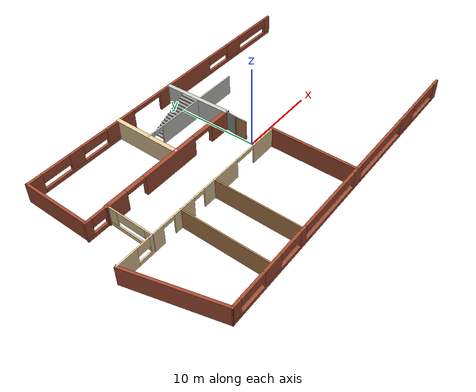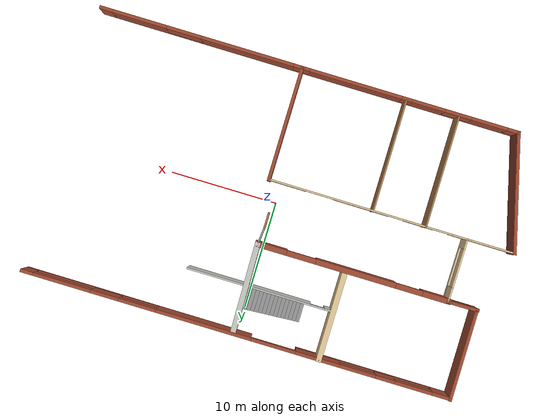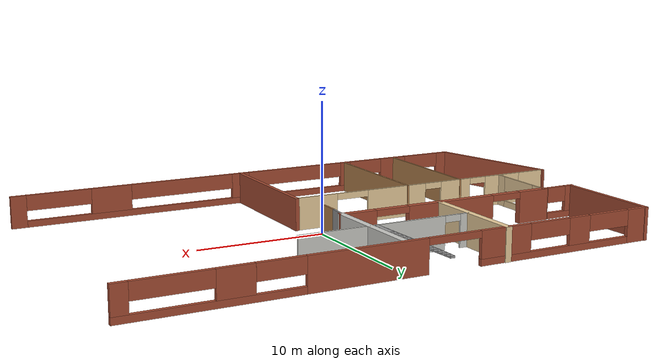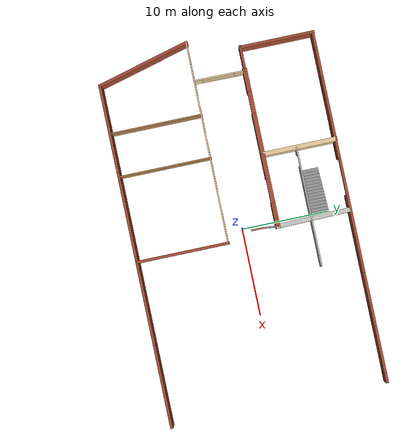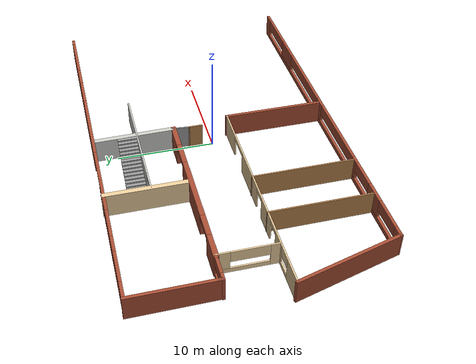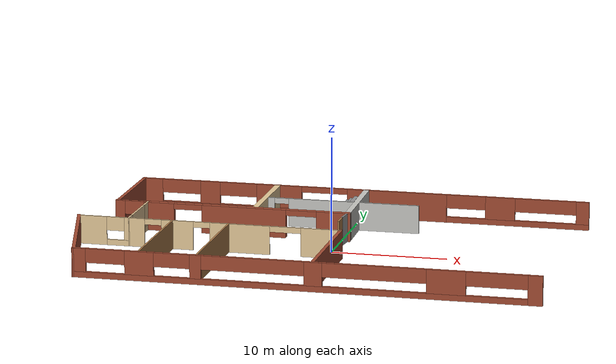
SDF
<sdf version="1.6">
 <world name="default">
  <model name="Building">
   <pose>-0.890597 0.014931 0 0 -0 0</pose>
   <link name="Stairs_0">
    <visual name="Stairs_0_Visual_0">
     <pose>-4.08117 8.87242 0.083333 0 -0 1.5708</pose>
     <geometry><box><size>2.02255 0.353633 0.166667</size></box></geometry>
     <material>
      <script><uri>file://media/materials/scripts/gazebo.material</uri><name>Gazebo/Grey</name></script>
      <ambient>1 1 1 1</ambient>
     </material>
     <meta><layer>0</layer></meta>
    </visual>
    <collision name="Stairs_0_Collision_0">
     <geometry><box><size>2.02255 0.353633 0.166667</size></box></geometry>
     <pose>-4.08117 8.87242 0.083333 0 -0 1.5708</pose>
    </collision>
    <visual name="Stairs_0_Visual_1">
     <pose>-3.72754 8.87242 0.25 0 -0 1.5708</pose>
     <geometry><box><size>2.02255 0.353633 0.166667</size></box></geometry>
     <material>
      <script><uri>file://media/materials/scripts/gazebo.material</uri><name>Gazebo/Grey</name></script>
      <ambient>1 1 1 1</ambient>
     </material>
     <meta><layer>0</layer></meta>
    </visual>
    <collision name="Stairs_0_Collision_1">
     <geometry><box><size>2.02255 0.353633 0.166667</size></box></geometry>
     <pose>-3.72754 8.87242 0.25 0 -0 1.5708</pose>
    </collision>
    <visual name="Stairs_0_Visual_2">
     <pose>-3.3739 8.87242 0.416667 0 -0 1.5708</pose>
     <geometry><box><size>2.02255 0.353633 0.166667</size></box></geometry>
     <material>
      <script><uri>file://media/materials/scripts/gazebo.material</uri><name>Gazebo/Grey</name></script>
      <ambient>1 1 1 1</ambient>
     </material>
     <meta><layer>0</layer></meta>
    </visual>
    <collision name="Stairs_0_Collision_2">
     <geometry><box><size>2.02255 0.353633 0.166667</size></box></geometry>
     <pose>-3.3739 8.87242 0.416667 0 -0 1.5708</pose>
    </collision>
    <visual name="Stairs_0_Visual_3">
     <pose>-3.02027 8.87242 0.583333 0 -0 1.5708</pose>
     <geometry><box><size>2.02255 0.353633 0.166667</size></box></geometry>
     <material>
      <script><uri>file://media/materials/scripts/gazebo.material</uri><name>Gazebo/Grey</name></script>
      <ambient>1 1 1 1</ambient>
     </material>
     <meta><layer>0</layer></meta>
    </visual>
    <collision name="Stairs_0_Collision_3">
     <geometry><box><size>2.02255 0.353633 0.166667</size></box></geometry>
     <pose>-3.02027 8.87242 0.583333 0 -0 1.5708</pose>
    </collision>
    <visual name="Stairs_0_Visual_4">
     <pose>-2.66664 8.87242 0.75 0 -0 1.5708</pose>
     <geometry><box><size>2.02255 0.353633 0.166667</size></box></geometry>
     <material>
      <script><uri>file://media/materials/scripts/gazebo.material</uri><name>Gazebo/Grey</name></script>
      <ambient>1 1 1 1</ambient>
     </material>
     <meta><layer>0</layer></meta>
    </visual>
    <collision name="Stairs_0_Collision_4">
     <geometry><box><size>2.02255 0.353633 0.166667</size></box></geometry>
     <pose>-2.66664 8.87242 0.75 0 -0 1.5708</pose>
    </collision>
    <visual name="Stairs_0_Visual_5">
     <pose>-2.313 8.87242 0.916667 0 -0 1.5708</pose>
     <geometry><box><size>2.02255 0.353633 0.166667</size></box></geometry>
     <material>
      <script><uri>file://media/materials/scripts/gazebo.material</uri><name>Gazebo/Grey</name></script>
      <ambient>1 1 1 1</ambient>
     </material>
     <meta><layer>0</layer></meta>
    </visual>
    <collision name="Stairs_0_Collision_5">
     <geometry><box><size>2.02255 0.353633 0.166667</size></box></geometry>
     <pose>-2.313 8.87242 0.916667 0 -0 1.5708</pose>
    </collision>
    <visual name="Stairs_0_Visual_6">
     <pose>-1.95937 8.87242 1.08333 0 -0 1.5708</pose>
     <geometry><box><size>2.02255 0.353633 0.166667</size></box></geometry>
     <material>
      <script><uri>file://media/materials/scripts/gazebo.material</uri><name>Gazebo/Grey</name></script>
      <ambient>1 1 1 1</ambient>
     </material>
     <meta><layer>0</layer></meta>
    </visual>
    <collision name="Stairs_0_Collision_6">
     <geometry><box><size>2.02255 0.353633 0.166667</size></box></geometry>
     <pose>-1.95937 8.87242 1.08333 0 -0 1.5708</pose>
    </collision>
    <visual name="Stairs_0_Visual_7">
     <pose>-1.60574 8.87242 1.25 0 -0 1.5708</pose>
     <geometry><box><size>2.02255 0.353633 0.166667</size></box></geometry>
     <material>
      <script><uri>file://media/materials/scripts/gazebo.material</uri><name>Gazebo/Grey</name></script>
      <ambient>1 1 1 1</ambient>
     </material>
     <meta><layer>0</layer></meta>
    </visual>
    <collision name="Stairs_0_Collision_7">
     <geometry><box><size>2.02255 0.353633 0.166667</size></box></geometry>
     <pose>-1.60574 8.87242 1.25 0 -0 1.5708</pose>
    </collision>
    <visual name="Stairs_0_Visual_8">
     <pose>-1.2521 8.87242 1.41667 0 -0 1.5708</pose>
     <geometry><box><size>2.02255 0.353633 0.166667</size></box></geometry>
     <material>
      <script><uri>file://media/materials/scripts/gazebo.material</uri><name>Gazebo/Grey</name></script>
      <ambient>1 1 1 1</ambient>
     </material>
     <meta><layer>0</layer></meta>
    </visual>
    <collision name="Stairs_0_Collision_8">
     <geometry><box><size>2.02255 0.353633 0.166667</size></box></geometry>
     <pose>-1.2521 8.87242 1.41667 0 -0 1.5708</pose>
    </collision>
    <visual name="Stairs_0_Visual_9">
     <pose>-0.898471 8.87242 1.58333 0 -0 1.5708</pose>
     <geometry><box><size>2.02255 0.353633 0.166667</size></box></geometry>
     <material>
      <script><uri>file://media/materials/scripts/gazebo.material</uri><name>Gazebo/Grey</name></script>
      <ambient>1 1 1 1</ambient>
     </material>
     <meta><layer>0</layer></meta>
    </visual>
    <collision name="Stairs_0_Collision_9">
     <geometry><box><size>2.02255 0.353633 0.166667</size></box></geometry>
     <pose>-0.898471 8.87242 1.58333 0 -0 1.5708</pose>
    </collision>
    <visual name="Stairs_0_Visual_10">
     <pose>-0.544838 8.87242 1.75 0 -0 1.5708</pose>
     <geometry><box><size>2.02255 0.353633 0.166667</size></box></geometry>
     <material>
      <script><uri>file://media/materials/scripts/gazebo.material</uri><name>Gazebo/Grey</name></script>
      <ambient>1 1 1 1</ambient>
     </material>
     <meta><layer>0</layer></meta>
    </visual>
    <collision name="Stairs_0_Collision_10">
     <geometry><box><size>2.02255 0.353633 0.166667</size></box></geometry>
     <pose>-0.544838 8.87242 1.75 0 -0 1.5708</pose>
    </collision>
    <visual name="Stairs_0_Visual_11">
     <pose>-0.191204 8.87242 1.91667 0 -0 1.5708</pose>
     <geometry><box><size>2.02255 0.353633 0.166667</size></box></geometry>
     <material>
      <script><uri>file://media/materials/scripts/gazebo.material</uri><name>Gazebo/Grey</name></script>
      <ambient>1 1 1 1</ambient>
     </material>
     <meta><layer>0</layer></meta>
    </visual>
    <collision name="Stairs_0_Collision_11">
     <geometry><box><size>2.02255 0.353633 0.166667</size></box></geometry>
     <pose>-0.191204 8.87242 1.91667 0 -0 1.5708</pose>
    </collision>
    <visual name="Stairs_0_Visual_12">
     <pose>0.162429 8.87242 2.08333 0 -0 1.5708</pose>
     <geometry><box><size>2.02255 0.353633 0.166667</size></box></geometry>
     <material>
      <script><uri>file://media/materials/scripts/gazebo.material</uri><name>Gazebo/Grey</name></script>
      <ambient>1 1 1 1</ambient>
     </material>
     <meta><layer>0</layer></meta>
    </visual>
    <collision name="Stairs_0_Collision_12">
     <geometry><box><size>2.02255 0.353633 0.166667</size></box></geometry>
     <pose>0.162429 8.87242 2.08333 0 -0 1.5708</pose>
    </collision>
    <visual name="Stairs_0_Visual_13">
     <pose>0.516062 8.87242 2.25 0 -0 1.5708</pose>
     <geometry><box><size>2.02255 0.353633 0.166667</size></box></geometry>
     <material>
      <script><uri>file://media/materials/scripts/gazebo.material</uri><name>Gazebo/Grey</name></script>
      <ambient>1 1 1 1</ambient>
     </material>
     <meta><layer>0</layer></meta>
    </visual>
    <collision name="Stairs_0_Collision_13">
     <geometry><box><size>2.02255 0.353633 0.166667</size></box></geometry>
     <pose>0.516062 8.87242 2.25 0 -0 1.5708</pose>
    </collision>
    <visual name="Stairs_0_Visual_14">
     <pose>0.869695 8.87242 2.41667 0 -0 1.5708</pose>
     <geometry><box><size>2.02255 0.353633 0.166667</size></box></geometry>
     <material>
      <script><uri>file://media/materials/scripts/gazebo.material</uri><name>Gazebo/Grey</name></script>
      <ambient>1 1 1 1</ambient>
     </material>
     <meta><layer>0</layer></meta>
    </visual>
    <collision name="Stairs_0_Collision_14">
     <geometry><box><size>2.02255 0.353633 0.166667</size></box></geometry>
     <pose>0.869695 8.87242 2.41667 0 -0 1.5708</pose>
    </collision>
   </link>
   <link name="Wall_17">
    <collision name="Wall_17_Collision">
     <geometry><box><size>8.49148 0.3 2.5</size></box></geometry>
     <pose>0 0 1.25 0 -0 0</pose>
    </collision>
    <visual name="Wall_17_Visual">
     <pose>0 0 1.25 0 -0 0</pose>
     <geometry><box><size>8.49148 0.3 2.5</size></box></geometry>
     <material>
      <script><uri>file://media/materials/scripts/gazebo.material</uri><name>Gazebo/Bricks</name></script>
      <ambient>1 1 1 1</ambient>
     </material>
     <meta><layer>0</layer></meta>
    </visual>
    <pose>-19.1444 8.2625 0 0 -0 1.5708</pose>
   </link>
   <link name="Wall_18">
    <pose>0.905623 12.3125 0 0 -0 0</pose>
    <visual name="Wall_18_Visual_0">
     <pose>-19.2672 0 1.25 0 -0 0</pose>
     <geometry><box><size>1.86558 0.3 2.5</size></box></geometry>
     <material>
      <script><uri>file://media/materials/scripts/gazebo.material</uri><name>Gazebo/Bricks</name></script>
      <ambient>1 1 1 1</ambient>
     </material>
     <meta><layer>0</layer></meta>
    </visual>
    <collision name="Wall_18_Collision_0">
     <geometry><box><size>1.86558 0.3 2.5</size></box></geometry>
     <pose>-19.2672 0 1.25 0 -0 0</pose>
    </collision>
    <visual name="Wall_18_Visual_1">
     <pose>3.08951 0 1.25 0 -0 0</pose>
     <geometry><box><size>8.93043 0.3 2.5</size></box></geometry>
     <material>
      <script><uri>file://media/materials/scripts/gazebo.material</uri><name>Gazebo/Bricks</name></script>
      <ambient>1 1 1 1</ambient>
     </material>
     <meta><layer>0</layer></meta>
    </visual>
    <collision name="Wall_18_Collision_1">
     <geometry><box><size>8.93043 0.3 2.5</size></box></geometry>
     <pose>3.08951 0 1.25 0 -0 0</pose>
    </collision>
    <visual name="Wall_18_Visual_2">
     <pose>-11.9358 0 0.25 0 -0 0</pose>
     <geometry><box><size>12.7972 0.3 0.5</size></box></geometry>
     <material>
      <script><uri>file://media/materials/scripts/gazebo.material</uri><name>Gazebo/Bricks</name></script>
      <ambient>1 1 1 1</ambient>
     </material>
     <meta><layer>0</layer></meta>
    </visual>
    <collision name="Wall_18_Collision_2">
     <geometry><box><size>12.7972 0.3 0.5</size></box></geometry>
     <pose>-11.9358 0 0.25 0 -0 0</pose>
    </collision>
    <visual name="Wall_18_Visual_3">
     <pose>13.8774 0 0.25 0 -0 0</pose>
     <geometry><box><size>12.6453 0.3 0.5</size></box></geometry>
     <material>
      <script><uri>file://media/materials/scripts/gazebo.material</uri><name>Gazebo/Bricks</name></script>
      <ambient>1 1 1 1</ambient>
     </material>
     <meta><layer>0</layer></meta>
    </visual>
    <collision name="Wall_18_Collision_3">
     <geometry><box><size>12.6453 0.3 0.5</size></box></geometry>
     <pose>13.8774 0 0.25 0 -0 0</pose>
    </collision>
    <visual name="Wall_18_Visual_4">
     <pose>-13.9321 0 1.5 0 -0 0</pose>
     <geometry><box><size>1.8072 0.3 2</size></box></geometry>
     <material>
      <script><uri>file://media/materials/scripts/gazebo.material</uri><name>Gazebo/Bricks</name></script>
      <ambient>1 1 1 1</ambient>
     </material>
     <meta><layer>0</layer></meta>
    </visual>
    <collision name="Wall_18_Collision_4">
     <geometry><box><size>1.8072 0.3 2</size></box></geometry>
     <pose>-13.9321 0 1.5 0 -0 0</pose>
    </collision>
    <visual name="Wall_18_Visual_5">
     <pose>-7.60468 0 1.5 0 -0 0</pose>
     <geometry><box><size>4.135 0.3 2</size></box></geometry>
     <material>
      <script><uri>file://media/materials/scripts/gazebo.material</uri><name>Gazebo/Bricks</name></script>
      <ambient>1 1 1 1</ambient>
     </material>
     <meta><layer>0</layer></meta>
    </visual>
    <collision name="Wall_18_Collision_5">
     <geometry><box><size>4.135 0.3 2</size></box></geometry>
     <pose>-7.60468 0 1.5 0 -0 0</pose>
    </collision>
    <visual name="Wall_18_Visual_6">
     <pose>-7.60468 0 1.5 0 -0 0</pose>
     <geometry><box><size>4.135 0.3 2</size></box></geometry>
     <material>
      <script><uri>file://media/materials/scripts/gazebo.material</uri><name>Gazebo/Bricks</name></script>
      <ambient>1 1 1 1</ambient>
     </material>
     <meta><layer>0</layer></meta>
    </visual>
    <collision name="Wall_18_Collision_6">
     <geometry><box><size>4.135 0.3 2</size></box></geometry>
     <pose>-7.60468 0 1.5 0 -0 0</pose>
    </collision>
    <visual name="Wall_18_Visual_7">
     <pose>12.3457 0 1.5 0 -0 0</pose>
     <geometry><box><size>2.62855 0.3 2</size></box></geometry>
     <material>
      <script><uri>file://media/materials/scripts/gazebo.material</uri><name>Gazebo/Bricks</name></script>
      <ambient>1 1 1 1</ambient>
     </material>
     <meta><layer>0</layer></meta>
    </visual>
    <collision name="Wall_18_Collision_7">
     <geometry><box><size>2.62855 0.3 2</size></box></geometry>
     <pose>12.3457 0 1.5 0 -0 0</pose>
    </collision>
    <visual name="Wall_18_Visual_8">
     <pose>19.6307 0 1.5 0 -0 0</pose>
     <geometry><box><size>1.13859 0.3 2</size></box></geometry>
     <material>
      <script><uri>file://media/materials/scripts/gazebo.material</uri><name>Gazebo/Bricks</name></script>
      <ambient>1 1 1 1</ambient>
     </material>
     <meta><layer>0</layer></meta>
    </visual>
    <collision name="Wall_18_Collision_8">
     <geometry><box><size>1.13859 0.3 2</size></box></geometry>
     <pose>19.6307 0 1.5 0 -0 0</pose>
    </collision>
    <visual name="Wall_18_Visual_9">
     <pose>-16.5851 0 1.9 0 -0 0</pose>
     <geometry><box><size>3.49867 0.3 1.2</size></box></geometry>
     <material>
      <script><uri>file://media/materials/scripts/gazebo.material</uri><name>Gazebo/Bricks</name></script>
      <ambient>1 1 1 1</ambient>
     </material>
     <meta><layer>0</layer></meta>
    </visual>
    <collision name="Wall_18_Collision_9">
     <geometry><box><size>3.49867 0.3 1.2</size></box></geometry>
     <pose>-16.5851 0 1.9 0 -0 0</pose>
    </collision>
    <visual name="Wall_18_Visual_10">
     <pose>9.29306 0 1.9 0 -0 0</pose>
     <geometry><box><size>3.47667 0.3 1.2</size></box></geometry>
     <material>
      <script><uri>file://media/materials/scripts/gazebo.material</uri><name>Gazebo/Bricks</name></script>
      <ambient>1 1 1 1</ambient>
     </material>
     <meta><layer>0</layer></meta>
    </visual>
    <collision name="Wall_18_Collision_10">
     <geometry><box><size>3.47667 0.3 1.2</size></box></geometry>
     <pose>9.29306 0 1.9 0 -0 0</pose>
    </collision>
    <visual name="Wall_18_Visual_11">
     <pose>-11.3504 0 1.9 0 -0 0</pose>
     <geometry><box><size>3.35637 0.3 1.2</size></box></geometry>
     <material>
      <script><uri>file://media/materials/scripts/gazebo.material</uri><name>Gazebo/Bricks</name></script>
      <ambient>1 1 1 1</ambient>
     </material>
     <meta><layer>0</layer></meta>
    </visual>
    <collision name="Wall_18_Collision_11">
     <geometry><box><size>3.35637 0.3 1.2</size></box></geometry>
     <pose>-11.3504 0 1.9 0 -0 0</pose>
    </collision>
    <visual name="Wall_18_Visual_12">
     <pose>16.3607 0 1.9 0 -0 0</pose>
     <geometry><box><size>5.40147 0.3 1.2</size></box></geometry>
     <material>
      <script><uri>file://media/materials/scripts/gazebo.material</uri><name>Gazebo/Bricks</name></script>
      <ambient>1 1 1 1</ambient>
     </material>
     <meta><layer>0</layer></meta>
    </visual>
    <collision name="Wall_18_Collision_12">
     <geometry><box><size>5.40147 0.3 1.2</size></box></geometry>
     <pose>16.3607 0 1.9 0 -0 0</pose>
    </collision>
    <visual name="Wall_18_Visual_13">
     <pose>-3.45644 0 2.25 0 -0 0</pose>
     <geometry><box><size>4.16148 0.3 0.5</size></box></geometry>
     <material>
      <script><uri>file://media/materials/scripts/gazebo.material</uri><name>Gazebo/Bricks</name></script>
      <ambient>1 1 1 1</ambient>
     </material>
     <meta><layer>0</layer></meta>
    </visual>
    <collision name="Wall_18_Collision_13">
     <geometry><box><size>4.16148 0.3 0.5</size></box></geometry>
     <pose>-3.45644 0 2.25 0 -0 0</pose>
    </collision>
    <visual name="Wall_18_Visual_14">
     <pose>-3.45644 0 2.25 0 -0 0</pose>
     <geometry><box><size>4.16148 0.3 0.5</size></box></geometry>
     <material>
      <script><uri>file://media/materials/scripts/gazebo.material</uri><name>Gazebo/Bricks</name></script>
      <ambient>1 1 1 1</ambient>
     </material>
     <meta><layer>0</layer></meta>
    </visual>
    <collision name="Wall_18_Collision_14">
     <geometry><box><size>4.16148 0.3 0.5</size></box></geometry>
     <pose>-3.45644 0 2.25 0 -0 0</pose>
    </collision>
   </link>
   <link name="Wall_20">
    <pose>1.39062 -12.3332 0 0 -0 3.14159</pose>
    <visual name="Wall_20_Visual_0">
     <pose>-19.0829 0 1.25 0 -0 0</pose>
     <geometry><box><size>1.20436 0.3 2.5</size></box></geometry>
     <material>
      <script><uri>file://media/materials/scripts/gazebo.material</uri><name>Gazebo/Bricks</name></script>
      <ambient>1 1 1 1</ambient>
     </material>
     <meta><layer>0</layer></meta>
    </visual>
    <collision name="Wall_20_Collision_0">
     <geometry><box><size>1.20436 0.3 2.5</size></box></geometry>
     <pose>-19.0829 0 1.25 0 -0 0</pose>
    </collision>
    <visual name="Wall_20_Visual_1">
     <pose>0.602179 0 0.25 0 -0 0</pose>
     <geometry><box><size>38.1657 0.3 0.5</size></box></geometry>
     <material>
      <script><uri>file://media/materials/scripts/gazebo.material</uri><name>Gazebo/Bricks</name></script>
      <ambient>1 1 1 1</ambient>
     </material>
     <meta><layer>0</layer></meta>
    </visual>
    <collision name="Wall_20_Collision_1">
     <geometry><box><size>38.1657 0.3 0.5</size></box></geometry>
     <pose>0.602179 0 0.25 0 -0 0</pose>
    </collision>
    <visual name="Wall_20_Visual_2">
     <pose>-11.7964 0 1.5 0 -0 0</pose>
     <geometry><box><size>3.25696 0.3 2</size></box></geometry>
     <material>
      <script><uri>file://media/materials/scripts/gazebo.material</uri><name>Gazebo/Bricks</name></script>
      <ambient>1 1 1 1</ambient>
     </material>
     <meta><layer>0</layer></meta>
    </visual>
    <collision name="Wall_20_Collision_2">
     <geometry><box><size>3.25696 0.3 2</size></box></geometry>
     <pose>-11.7964 0 1.5 0 -0 0</pose>
    </collision>
    <visual name="Wall_20_Visual_3">
     <pose>-0.778929 0 1.5 0 -0 0</pose>
     <geometry><box><size>1.5069 0.3 2</size></box></geometry>
     <material>
      <script><uri>file://media/materials/scripts/gazebo.material</uri><name>Gazebo/Bricks</name></script>
      <ambient>1 1 1 1</ambient>
     </material>
     <meta><layer>0</layer></meta>
    </visual>
    <collision name="Wall_20_Collision_3">
     <geometry><box><size>1.5069 0.3 2</size></box></geometry>
     <pose>-0.778929 0 1.5 0 -0 0</pose>
    </collision>
    <visual name="Wall_20_Visual_4">
     <pose>9.12483 0 1.5 0 -0 0</pose>
     <geometry><box><size>0.950063 0.3 2</size></box></geometry>
     <material>
      <script><uri>file://media/materials/scripts/gazebo.material</uri><name>Gazebo/Bricks</name></script>
      <ambient>1 1 1 1</ambient>
     </material>
     <meta><layer>0</layer></meta>
    </visual>
    <collision name="Wall_20_Collision_4">
     <geometry><box><size>0.950063 0.3 2</size></box></geometry>
     <pose>9.12483 0 1.5 0 -0 0</pose>
    </collision>
    <visual name="Wall_20_Visual_5">
     <pose>13.906 0 1.5 0 -0 0</pose>
     <geometry><box><size>2.47804 0.3 2</size></box></geometry>
     <material>
      <script><uri>file://media/materials/scripts/gazebo.material</uri><name>Gazebo/Bricks</name></script>
      <ambient>1 1 1 1</ambient>
     </material>
     <meta><layer>0</layer></meta>
    </visual>
    <collision name="Wall_20_Collision_5">
     <geometry><box><size>2.47804 0.3 2</size></box></geometry>
     <pose>13.906 0 1.5 0 -0 0</pose>
    </collision>
    <visual name="Wall_20_Visual_6">
     <pose>19.0878 0 1.5 0 -0 0</pose>
     <geometry><box><size>1.19447 0.3 2</size></box></geometry>
     <material>
      <script><uri>file://media/materials/scripts/gazebo.material</uri><name>Gazebo/Bricks</name></script>
      <ambient>1 1 1 1</ambient>
     </material>
     <meta><layer>0</layer></meta>
    </visual>
    <collision name="Wall_20_Collision_6">
     <geometry><box><size>1.19447 0.3 2</size></box></geometry>
     <pose>19.0878 0 1.5 0 -0 0</pose>
    </collision>
    <visual name="Wall_20_Visual_7">
     <pose>-15.9528 0 1.9 0 -0 0</pose>
     <geometry><box><size>5.05583 0.3 1.2</size></box></geometry>
     <material>
      <script><uri>file://media/materials/scripts/gazebo.material</uri><name>Gazebo/Bricks</name></script>
      <ambient>1 1 1 1</ambient>
     </material>
     <meta><layer>0</layer></meta>
    </visual>
    <collision name="Wall_20_Collision_7">
     <geometry><box><size>5.05583 0.3 1.2</size></box></geometry>
     <pose>-15.9528 0 1.9 0 -0 0</pose>
    </collision>
    <visual name="Wall_20_Visual_8">
     <pose>-5.85013 0 1.9 0 -0 0</pose>
     <geometry><box><size>8.63551 0.3 1.2</size></box></geometry>
     <material>
      <script><uri>file://media/materials/scripts/gazebo.material</uri><name>Gazebo/Bricks</name></script>
      <ambient>1 1 1 1</ambient>
     </material>
     <meta><layer>0</layer></meta>
    </visual>
    <collision name="Wall_20_Collision_8">
     <geometry><box><size>8.63551 0.3 1.2</size></box></geometry>
     <pose>-5.85013 0 1.9 0 -0 0</pose>
    </collision>
    <visual name="Wall_20_Visual_9">
     <pose>4.31216 0 1.9 0 -0 0</pose>
     <geometry><box><size>8.67528 0.3 1.2</size></box></geometry>
     <material>
      <script><uri>file://media/materials/scripts/gazebo.material</uri><name>Gazebo/Bricks</name></script>
      <ambient>1 1 1 1</ambient>
     </material>
     <meta><layer>0</layer></meta>
    </visual>
    <collision name="Wall_20_Collision_9">
     <geometry><box><size>8.67528 0.3 1.2</size></box></geometry>
     <pose>4.31216 0 1.9 0 -0 0</pose>
    </collision>
    <visual name="Wall_20_Visual_10">
     <pose>11.1334 0 1.9 0 -0 0</pose>
     <geometry><box><size>3.06713 0.3 1.2</size></box></geometry>
     <material>
      <script><uri>file://media/materials/scripts/gazebo.material</uri><name>Gazebo/Bricks</name></script>
      <ambient>1 1 1 1</ambient>
     </material>
     <meta><layer>0</layer></meta>
    </visual>
    <collision name="Wall_20_Collision_10">
     <geometry><box><size>3.06713 0.3 1.2</size></box></geometry>
     <pose>11.1334 0 1.9 0 -0 0</pose>
    </collision>
    <visual name="Wall_20_Visual_11">
     <pose>16.8178 0 1.9 0 -0 0</pose>
     <geometry><box><size>3.34554 0.3 1.2</size></box></geometry>
     <material>
      <script><uri>file://media/materials/scripts/gazebo.material</uri><name>Gazebo/Bricks</name></script>
      <ambient>1 1 1 1</ambient>
     </material>
     <meta><layer>0</layer></meta>
    </visual>
    <collision name="Wall_20_Collision_11">
     <geometry><box><size>3.34554 0.3 1.2</size></box></geometry>
     <pose>16.8178 0 1.9 0 -0 0</pose>
    </collision>
   </link>
   <link name="Wall_38">
    <collision name="Wall_38_Collision">
     <geometry><box><size>11.1419 0.3 2.5</size></box></geometry>
     <pose>0 0 1.25 0 -0 0</pose>
    </collision>
    <visual name="Wall_38_Visual">
     <pose>0 0 1.25 0 -0 0</pose>
     <geometry><box><size>11.1419 0.3 2.5</size></box></geometry>
     <material>
      <script><uri>file://media/materials/scripts/gazebo.material</uri><name>Gazebo/Bricks</name></script>
      <ambient>1 1 1 1</ambient>
     </material>
     <meta><layer>0</layer></meta>
    </visual>
    <pose>-19.5334 -7.09324 0 0 -0 1.82991</pose>
   </link>
   <link name="Wall_39">
    <pose>-18.7098 -1.8533 0 0 0 -2.8e-05</pose>
    <visual name="Wall_39_Visual_0">
     <pose>-1.00678 0 1.25 0 -0 0</pose>
     <geometry><box><size>2.56168 0.15 2.5</size></box></geometry>
     <material>
      <script><uri>file://media/materials/scripts/gazebo.material</uri><name>Gazebo/Grey</name></script>
      <ambient>0.921569 0.807843 0.615686 1</ambient>
     </material>
     <meta><layer>0</layer></meta>
    </visual>
    <collision name="Wall_39_Collision_0">
     <geometry><box><size>2.56168 0.15 2.5</size></box></geometry>
     <pose>-1.00678 0 1.25 0 -0 0</pose>
    </collision>
    <visual name="Wall_39_Visual_1">
     <pose>1.28084 0 0.25 0 -0 0</pose>
     <geometry><box><size>2.01356 0.15 0.5</size></box></geometry>
     <material>
      <script><uri>file://media/materials/scripts/gazebo.material</uri><name>Gazebo/Grey</name></script>
      <ambient>0.921569 0.807843 0.615686 1</ambient>
     </material>
     <meta><layer>0</layer></meta>
    </visual>
    <collision name="Wall_39_Collision_1">
     <geometry><box><size>2.01356 0.15 0.5</size></box></geometry>
     <pose>1.28084 0 0.25 0 -0 0</pose>
    </collision>
    <visual name="Wall_39_Visual_2">
     <pose>2.05678 0 1.5 0 -0 0</pose>
     <geometry><box><size>0.46168 0.15 2</size></box></geometry>
     <material>
      <script><uri>file://media/materials/scripts/gazebo.material</uri><name>Gazebo/Grey</name></script>
      <ambient>0.921569 0.807843 0.615686 1</ambient>
     </material>
     <meta><layer>0</layer></meta>
    </visual>
    <collision name="Wall_39_Collision_2">
     <geometry><box><size>0.46168 0.15 2</size></box></geometry>
     <pose>2.05678 0 1.5 0 -0 0</pose>
    </collision>
    <visual name="Wall_39_Visual_3">
     <pose>1.05 0 1.9 0 -0 0</pose>
     <geometry><box><size>1.55187 0.15 1.2</size></box></geometry>
     <material>
      <script><uri>file://media/materials/scripts/gazebo.material</uri><name>Gazebo/Grey</name></script>
      <ambient>0.921569 0.807843 0.615686 1</ambient>
     </material>
     <meta><layer>0</layer></meta>
    </visual>
    <collision name="Wall_39_Collision_3">
     <geometry><box><size>1.55187 0.15 1.2</size></box></geometry>
     <pose>1.05 0 1.9 0 -0 0</pose>
    </collision>
   </link>
   <link name="Wall_40">
    <pose>-16.4724 1.07267 0 0 -0 1.56232</pose>
    <visual name="Wall_40_Visual_0">
     <pose>-2.50508 0 1.25 0 -0 0</pose>
     <geometry><box><size>0.99212 0.15 2.5</size></box></geometry>
     <material>
      <script><uri>file://media/materials/scripts/gazebo.material</uri><name>Gazebo/Grey</name></script>
      <ambient>0.921569 0.807843 0.615686 1</ambient>
     </material>
     <meta><layer>0</layer></meta>
    </visual>
    <collision name="Wall_40_Collision_0">
     <geometry><box><size>0.99212 0.15 2.5</size></box></geometry>
     <pose>-2.50508 0 1.25 0 -0 0</pose>
    </collision>
    <visual name="Wall_40_Visual_1">
     <pose>0.49606 0 0.25 0 -0 0</pose>
     <geometry><box><size>5.01015 0.15 0.5</size></box></geometry>
     <material>
      <script><uri>file://media/materials/scripts/gazebo.material</uri><name>Gazebo/Grey</name></script>
      <ambient>0.921569 0.807843 0.615686 1</ambient>
     </material>
     <meta><layer>0</layer></meta>
    </visual>
    <collision name="Wall_40_Collision_1">
     <geometry><box><size>5.01015 0.15 0.5</size></box></geometry>
     <pose>0.49606 0 0.25 0 -0 0</pose>
    </collision>
    <visual name="Wall_40_Visual_2">
     <pose>2.31017 0 1.5 0 -0 0</pose>
     <geometry><box><size>1.38193 0.15 2</size></box></geometry>
     <material>
      <script><uri>file://media/materials/scripts/gazebo.material</uri><name>Gazebo/Grey</name></script>
      <ambient>0.921569 0.807843 0.615686 1</ambient>
     </material>
     <meta><layer>0</layer></meta>
    </visual>
    <collision name="Wall_40_Collision_2">
     <geometry><box><size>1.38193 0.15 2</size></box></geometry>
     <pose>2.31017 0 1.5 0 -0 0</pose>
    </collision>
    <visual name="Wall_40_Visual_3">
     <pose>-0.194907 0 1.9 0 -0 0</pose>
     <geometry><box><size>3.62822 0.15 1.2</size></box></geometry>
     <material>
      <script><uri>file://media/materials/scripts/gazebo.material</uri><name>Gazebo/Grey</name></script>
      <ambient>0.921569 0.807843 0.615686 1</ambient>
     </material>
     <meta><layer>0</layer></meta>
    </visual>
    <collision name="Wall_40_Collision_3">
     <geometry><box><size>3.62822 0.15 1.2</size></box></geometry>
     <pose>-0.194907 0 1.9 0 -0 0</pose>
    </collision>
   </link>
   <link name="Wall_41">
    <pose>-17.825 3.99773 0 0 0 -3.14089</pose>
    <visual name="Wall_41_Visual_0">
     <pose>-1.26981 0 1.25 0 -0 0</pose>
     <geometry><box><size>0.515248 0.3 2.5</size></box></geometry>
     <material>
      <script><uri>file://media/materials/scripts/gazebo.material</uri><name>Gazebo/Bricks</name></script>
      <ambient>1 1 1 1</ambient>
     </material>
     <meta><layer>0</layer></meta>
    </visual>
    <collision name="Wall_41_Collision_0">
     <geometry><box><size>0.515248 0.3 2.5</size></box></geometry>
     <pose>-1.26981 0 1.25 0 -0 0</pose>
    </collision>
    <visual name="Wall_41_Visual_1">
     <pose>0.257624 0 0.25 0 -0 0</pose>
     <geometry><box><size>2.53962 0.3 0.5</size></box></geometry>
     <material>
      <script><uri>file://media/materials/scripts/gazebo.material</uri><name>Gazebo/Bricks</name></script>
      <ambient>1 1 1 1</ambient>
     </material>
     <meta><layer>0</layer></meta>
    </visual>
    <collision name="Wall_41_Collision_1">
     <geometry><box><size>2.53962 0.3 0.5</size></box></geometry>
     <pose>0.257624 0 0.25 0 -0 0</pose>
    </collision>
    <visual name="Wall_41_Visual_2">
     <pose>1.10217 0 1.5 0 -0 0</pose>
     <geometry><box><size>0.850518 0.3 2</size></box></geometry>
     <material>
      <script><uri>file://media/materials/scripts/gazebo.material</uri><name>Gazebo/Bricks</name></script>
      <ambient>1 1 1 1</ambient>
     </material>
     <meta><layer>0</layer></meta>
    </visual>
    <collision name="Wall_41_Collision_2">
     <geometry><box><size>0.850518 0.3 2</size></box></geometry>
     <pose>1.10217 0 1.5 0 -0 0</pose>
    </collision>
    <visual name="Wall_41_Visual_3">
     <pose>-0.167635 0 1.9 0 -0 0</pose>
     <geometry><box><size>1.6891 0.3 1.2</size></box></geometry>
     <material>
      <script><uri>file://media/materials/scripts/gazebo.material</uri><name>Gazebo/Bricks</name></script>
      <ambient>1 1 1 1</ambient>
     </material>
     <meta><layer>0</layer></meta>
    </visual>
    <collision name="Wall_41_Collision_3">
     <geometry><box><size>1.6891 0.3 1.2</size></box></geometry>
     <pose>-0.167635 0 1.9 0 -0 0</pose>
    </collision>
   </link>
   <link name="Wall_42">
    <collision name="Wall_42_Collision">
     <geometry><box><size>0.5 0.15 2.5</size></box></geometry>
     <pose>0 0 1.25 0 -0 0</pose>
    </collision>
    <visual name="Wall_42_Visual">
     <pose>0 0 1.25 0 -0 0</pose>
     <geometry><box><size>0.5 0.15 2.5</size></box></geometry>
     <material>
      <script><uri>file://media/materials/scripts/gazebo.material</uri><name>Gazebo/Grey</name></script>
      <ambient>1 1 1 1</ambient>
     </material>
     <meta><layer>0</layer></meta>
    </visual>
    <pose>-19.2024 4.1717 0 0 -0 1.57089</pose>
   </link>
   <link name="Wall_43">
    <collision name="Wall_43_Collision">
     <geometry><box><size>0.16 0.15 2.5</size></box></geometry>
     <pose>0 0 1.25 0 -0 0</pose>
    </collision>
    <visual name="Wall_43_Visual">
     <pose>0 0 1.25 0 -0 0</pose>
     <geometry><box><size>0.16 0.15 2.5</size></box></geometry>
     <material>
      <script><uri>file://media/materials/scripts/gazebo.material</uri><name>Gazebo/Grey</name></script>
      <ambient>1 1 1 1</ambient>
     </material>
     <meta><layer>0</layer></meta>
    </visual>
    <pose>-19.1974 4.34664 0 0 -0 0</pose>
   </link>
   <link name="Wall_47">
    <pose>-7.52262 3.97255 0 0 -0 0</pose>
    <visual name="Wall_47_Visual_0">
     <pose>-7.84772 0 1.25 0 -0 0</pose>
     <geometry><box><size>2.65456 0.5 2.5</size></box></geometry>
     <material>
      <script><uri>file://media/materials/scripts/gazebo.material</uri><name>Gazebo/Bricks</name></script>
      <ambient>1 1 1 1</ambient>
     </material>
     <meta><layer>0</layer></meta>
    </visual>
    <collision name="Wall_47_Collision_0">
     <geometry><box><size>2.65456 0.5 2.5</size></box></geometry>
     <pose>-7.84772 0 1.25 0 -0 0</pose>
    </collision>
    <visual name="Wall_47_Visual_1">
     <pose>-0.271347 0 1.25 0 -0 0</pose>
     <geometry><box><size>7.49818 0.5 2.5</size></box></geometry>
     <material>
      <script><uri>file://media/materials/scripts/gazebo.material</uri><name>Gazebo/Bricks</name></script>
      <ambient>1 1 1 1</ambient>
     </material>
     <meta><layer>0</layer></meta>
    </visual>
    <collision name="Wall_47_Collision_1">
     <geometry><box><size>7.49818 0.5 2.5</size></box></geometry>
     <pose>-0.271347 0 1.25 0 -0 0</pose>
    </collision>
    <visual name="Wall_47_Visual_2">
     <pose>7.68773 0 1.25 0 -0 0</pose>
     <geometry><box><size>2.97454 0.5 2.5</size></box></geometry>
     <material>
      <script><uri>file://media/materials/scripts/gazebo.material</uri><name>Gazebo/Bricks</name></script>
      <ambient>1 1 1 1</ambient>
     </material>
     <meta><layer>0</layer></meta>
    </visual>
    <collision name="Wall_47_Collision_2">
     <geometry><box><size>2.97454 0.5 2.5</size></box></geometry>
     <pose>7.68773 0 1.25 0 -0 0</pose>
    </collision>
    <visual name="Wall_47_Visual_3">
     <pose>-5.27044 0 2.25 0 -0 0</pose>
     <geometry><box><size>2.5 0.5 0.5</size></box></geometry>
     <material>
      <script><uri>file://media/materials/scripts/gazebo.material</uri><name>Gazebo/Bricks</name></script>
      <ambient>1 1 1 1</ambient>
     </material>
     <meta><layer>0</layer></meta>
    </visual>
    <collision name="Wall_47_Collision_3">
     <geometry><box><size>2.5 0.5 0.5</size></box></geometry>
     <pose>-5.27044 0 2.25 0 -0 0</pose>
    </collision>
    <visual name="Wall_47_Visual_4">
     <pose>4.8391 0 2.25 0 -0 0</pose>
     <geometry><box><size>2.72272 0.5 0.5</size></box></geometry>
     <material>
      <script><uri>file://media/materials/scripts/gazebo.material</uri><name>Gazebo/Bricks</name></script>
      <ambient>1 1 1 1</ambient>
     </material>
     <meta><layer>0</layer></meta>
    </visual>
    <collision name="Wall_47_Collision_4">
     <geometry><box><size>2.72272 0.5 0.5</size></box></geometry>
     <pose>4.8391 0 2.25 0 -0 0</pose>
    </collision>
   </link>
   <link name="Wall_48">
    <collision name="Wall_48_Collision">
     <geometry><box><size>8.59954 0.5 2.5</size></box></geometry>
     <pose>0 0 1.25 0 -0 0</pose>
    </collision>
    <visual name="Wall_48_Visual">
     <pose>0 0 1.25 0 -0 0</pose>
     <geometry><box><size>8.59954 0.5 2.5</size></box></geometry>
     <material>
      <script><uri>file://media/materials/scripts/gazebo.material</uri><name>Gazebo/CeilingTiled</name></script>
      <ambient>1 1 1 1</ambient>
     </material>
     <meta><layer>0</layer></meta>
    </visual>
    <pose>1.325 8.04773 0 0 -0 1.5899</pose>
   </link>
   <link name="Wall_50">
    <collision name="Wall_50_Collision">
     <geometry><box><size>8.59982 0.5 2.5</size></box></geometry>
     <pose>0 0 1.25 0 -0 0</pose>
    </collision>
    <visual name="Wall_50_Visual">
     <pose>0 0 1.25 0 -0 0</pose>
     <geometry><box><size>8.59982 0.5 2.5</size></box></geometry>
     <material>
      <script><uri>file://media/materials/scripts/gazebo.material</uri><name>Gazebo/Grey</name></script>
      <ambient>0.921569 0.807843 0.615686 1</ambient>
     </material>
     <meta><layer>0</layer></meta>
    </visual>
    <pose>-6.83538 8.21676 0 0 0 -1.5708</pose>
   </link>
   <link name="Wall_54">
    <pose>-7.19729 -1.8796 0 0 0 -0.002821</pose>
    <visual name="Wall_54_Visual_0">
     <pose>-8.62498 0 1.25 0 -0 0</pose>
     <geometry><box><size>1.50004 0.15 2.5</size></box></geometry>
     <material>
      <script><uri>file://media/materials/scripts/gazebo.material</uri><name>Gazebo/Grey</name></script>
      <ambient>0.921569 0.807843 0.615686 1</ambient>
     </material>
     <meta><layer>0</layer></meta>
    </visual>
    <collision name="Wall_54_Collision_0">
     <geometry><box><size>1.50004 0.15 2.5</size></box></geometry>
     <pose>-8.62498 0 1.25 0 -0 0</pose>
    </collision>
    <visual name="Wall_54_Visual_1">
     <pose>-4.97384 0 1.25 0 -0 0</pose>
     <geometry><box><size>2.79924 0.15 2.5</size></box></geometry>
     <material>
      <script><uri>file://media/materials/scripts/gazebo.material</uri><name>Gazebo/Grey</name></script>
      <ambient>0.921569 0.807843 0.615686 1</ambient>
     </material>
     <meta><layer>0</layer></meta>
    </visual>
    <collision name="Wall_54_Collision_1">
     <geometry><box><size>2.79924 0.15 2.5</size></box></geometry>
     <pose>-4.97384 0 1.25 0 -0 0</pose>
    </collision>
    <visual name="Wall_54_Visual_2">
     <pose>0.514863 0 1.25 0 -0 0</pose>
     <geometry><box><size>5.23532 0.15 2.5</size></box></geometry>
     <material>
      <script><uri>file://media/materials/scripts/gazebo.material</uri><name>Gazebo/Grey</name></script>
      <ambient>0.921569 0.807843 0.615686 1</ambient>
     </material>
     <meta><layer>0</layer></meta>
    </visual>
    <collision name="Wall_54_Collision_2">
     <geometry><box><size>5.23532 0.15 2.5</size></box></geometry>
     <pose>0.514863 0 1.25 0 -0 0</pose>
    </collision>
    <visual name="Wall_54_Visual_3">
     <pose>7.60601 0 1.25 0 -0 0</pose>
     <geometry><box><size>3.53798 0.15 2.5</size></box></geometry>
     <material>
      <script><uri>file://media/materials/scripts/gazebo.material</uri><name>Gazebo/Grey</name></script>
      <ambient>0.921569 0.807843 0.615686 1</ambient>
     </material>
     <meta><layer>0</layer></meta>
    </visual>
    <collision name="Wall_54_Collision_3">
     <geometry><box><size>3.53798 0.15 2.5</size></box></geometry>
     <pose>7.60601 0 1.25 0 -0 0</pose>
    </collision>
    <visual name="Wall_54_Visual_4">
     <pose>-7.12421 0 2.25 0 -0 0</pose>
     <geometry><box><size>1.5015 0.15 0.5</size></box></geometry>
     <material>
      <script><uri>file://media/materials/scripts/gazebo.material</uri><name>Gazebo/Grey</name></script>
      <ambient>0.921569 0.807843 0.615686 1</ambient>
     </material>
     <meta><layer>0</layer></meta>
    </visual>
    <collision name="Wall_54_Collision_4">
     <geometry><box><size>1.5015 0.15 0.5</size></box></geometry>
     <pose>-7.12421 0 2.25 0 -0 0</pose>
    </collision>
    <visual name="Wall_54_Visual_5">
     <pose>-2.83851 0 2.25 0 -0 0</pose>
     <geometry><box><size>1.47142 0.15 0.5</size></box></geometry>
     <material>
      <script><uri>file://media/materials/scripts/gazebo.material</uri><name>Gazebo/Grey</name></script>
      <ambient>0.921569 0.807843 0.615686 1</ambient>
     </material>
     <meta><layer>0</layer></meta>
    </visual>
    <collision name="Wall_54_Collision_5">
     <geometry><box><size>1.47142 0.15 0.5</size></box></geometry>
     <pose>-2.83851 0 2.25 0 -0 0</pose>
    </collision>
    <visual name="Wall_54_Visual_6">
     <pose>4.48477 0 2.25 0 -0 0</pose>
     <geometry><box><size>2.7045 0.15 0.5</size></box></geometry>
     <material>
      <script><uri>file://media/materials/scripts/gazebo.material</uri><name>Gazebo/Grey</name></script>
      <ambient>0.921569 0.807843 0.615686 1</ambient>
     </material>
     <meta><layer>0</layer></meta>
    </visual>
    <collision name="Wall_54_Collision_6">
     <geometry><box><size>2.7045 0.15 0.5</size></box></geometry>
     <pose>4.48477 0 2.25 0 -0 0</pose>
    </collision>
   </link>
   <link name="Wall_55">
    <collision name="Wall_55_Collision">
     <geometry><box><size>10.65 0.3 2.5</size></box></geometry>
     <pose>0 0 1.25 0 -0 0</pose>
    </collision>
    <visual name="Wall_55_Visual">
     <pose>0 0 1.25 0 -0 0</pose>
     <geometry><box><size>10.65 0.3 2.5</size></box></geometry>
     <material>
      <script><uri>file://media/materials/scripts/gazebo.material</uri><name>Gazebo/Bricks</name></script>
      <ambient>1 1 1 1</ambient>
     </material>
     <meta><layer>0</layer></meta>
    </visual>
    <pose>2.10262 -7.05454 0 0 0 -1.5708</pose>
   </link>
   <link name="Wall_57">
    <collision name="Wall_57_Collision">
     <geometry><box><size>10.5 0.15 2.5</size></box></geometry>
     <pose>0 0 1.25 0 -0 0</pose>
    </collision>
    <visual name="Wall_57_Visual">
     <pose>0 0 1.25 0 -0 0</pose>
     <geometry><box><size>10.5 0.15 2.5</size></box></geometry>
     <material>
      <script><uri>file://media/materials/scripts/gazebo.material</uri><name>Gazebo/Wood</name></script>
      <ambient>1 1 1 1</ambient>
     </material>
     <meta><layer>0</layer></meta>
    </visual>
    <pose>-7.67714 -7.00521 0 0 0 -1.5708</pose>
   </link>
   <link name="Wall_59">
    <collision name="Wall_59_Collision">
     <geometry><box><size>10.5 0.15 2.5</size></box></geometry>
     <pose>0 0 1.25 0 -0 0</pose>
    </collision>
    <visual name="Wall_59_Visual">
     <pose>0 0 1.25 0 -0 0</pose>
     <geometry><box><size>10.5 0.15 2.5</size></box></geometry>
     <material>
      <script><uri>file://media/materials/scripts/gazebo.material</uri><name>Gazebo/Wood</name></script>
      <ambient>1 1 1 1</ambient>
     </material>
     <meta><layer>0</layer></meta>
    </visual>
    <pose>-12.6217 -7.00521 0 0 0 -1.5708</pose>
   </link>
   <link name="Wall_76">
    <collision name="Wall_76_Collision">
     <geometry><box><size>1.75952 0.15 2.5</size></box></geometry>
     <pose>0 0 1.25 0 -0 0</pose>
    </collision>
    <visual name="Wall_76_Visual">
     <pose>0 0 1.25 0 -0 0</pose>
     <geometry><box><size>1.75952 0.15 2.5</size></box></geometry>
     <material>
      <script><uri>file://media/materials/scripts/gazebo.material</uri><name>Gazebo/Grey</name></script>
      <ambient>1 1 1 1</ambient>
     </material>
     <meta><layer>0</layer></meta>
    </visual>
    <pose>1.32499 3.19767 0 0 0 -1.66712</pose>
   </link>
   <link name="Wall_82">
    <pose>-0.002831 7.83234 0 0 -0 0</pose>
    <visual name="Wall_82_Visual_0">
     <pose>-6.44296 0 1.25 0 -0 0</pose>
     <geometry><box><size>0.864077 0.15 2.5</size></box></geometry>
     <material>
      <script><uri>file://media/materials/scripts/gazebo.material</uri><name>Gazebo/CeilingTiled</name></script>
      <ambient>1 1 1 1</ambient>
     </material>
     <meta><layer>0</layer></meta>
    </visual>
    <collision name="Wall_82_Collision_0">
     <geometry><box><size>0.864077 0.15 2.5</size></box></geometry>
     <pose>-6.44296 0 1.25 0 -0 0</pose>
    </collision>
    <visual name="Wall_82_Visual_1">
     <pose>1.07119 0 1.25 0 -0 0</pose>
     <geometry><box><size>11.6076 0.15 2.5</size></box></geometry>
     <material>
      <script><uri>file://media/materials/scripts/gazebo.material</uri><name>Gazebo/CeilingTiled</name></script>
      <ambient>1 1 1 1</ambient>
     </material>
     <meta><layer>0</layer></meta>
    </visual>
    <collision name="Wall_82_Collision_1">
     <geometry><box><size>11.6076 0.15 2.5</size></box></geometry>
     <pose>1.07119 0 1.25 0 -0 0</pose>
    </collision>
    <visual name="Wall_82_Visual_2">
     <pose>-5.37177 0 2.25 0 -0 0</pose>
     <geometry><box><size>1.2783 0.15 0.5</size></box></geometry>
     <material>
      <script><uri>file://media/materials/scripts/gazebo.material</uri><name>Gazebo/CeilingTiled</name></script>
      <ambient>1 1 1 1</ambient>
     </material>
     <meta><layer>0</layer></meta>
    </visual>
    <collision name="Wall_82_Collision_2">
     <geometry><box><size>1.2783 0.15 0.5</size></box></geometry>
     <pose>-5.37177 0 2.25 0 -0 0</pose>
    </collision>
   </link>
   <link name="Wall_88">
    <collision name="Wall_88_Collision">
     <geometry><box><size>1.5 0.15 2.5</size></box></geometry>
     <pose>0 0 1.25 0 -0 0</pose>
    </collision>
    <visual name="Wall_88_Visual">
     <pose>0 0 1.25 0 -0 0</pose>
     <geometry><box><size>1.5 0.15 2.5</size></box></geometry>
     <material>
      <script><uri>file://media/materials/scripts/gazebo.material</uri><name>Gazebo/Wood</name></script>
      <ambient>1 1 1 1</ambient>
     </material>
     <meta><layer>0</layer></meta>
    </visual>
    <pose>1.24759 1.72164 0 0 0 -1.5708</pose>
   </link>
   <static>1</static>
  </model>
 </world>
</sdf>
